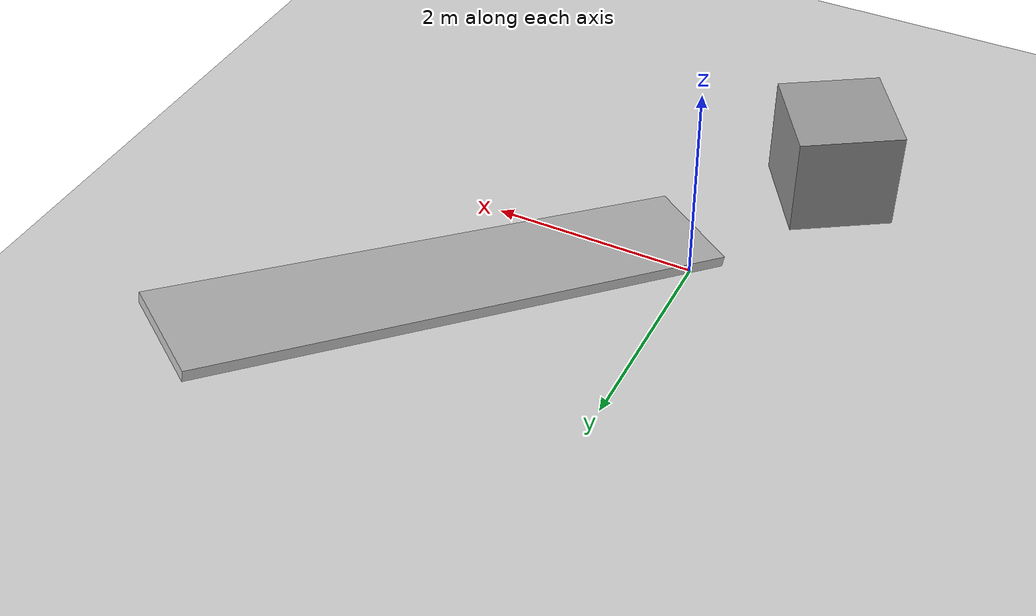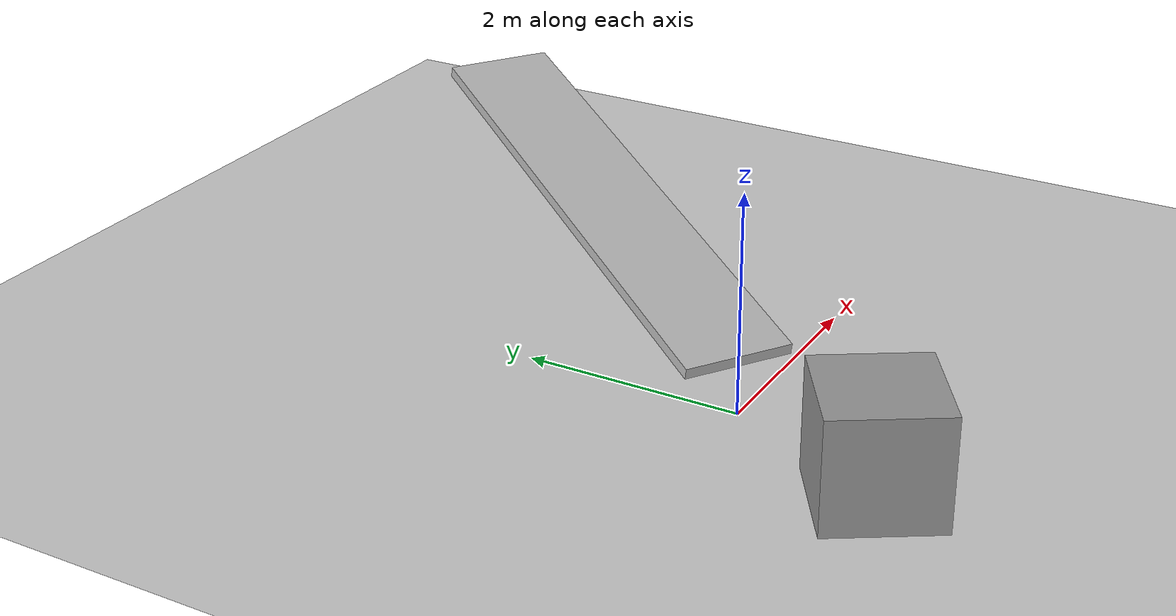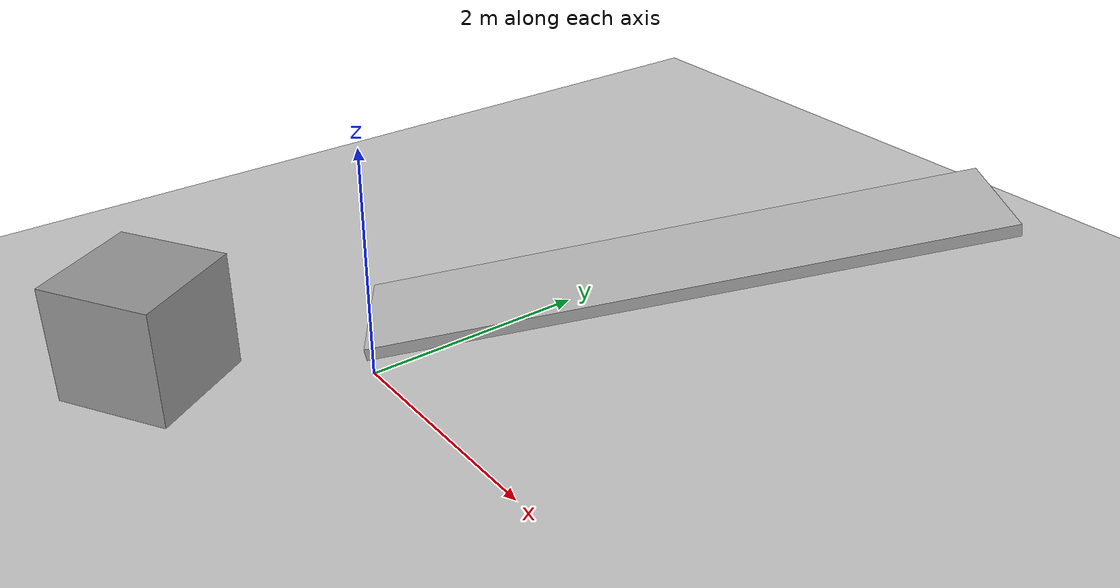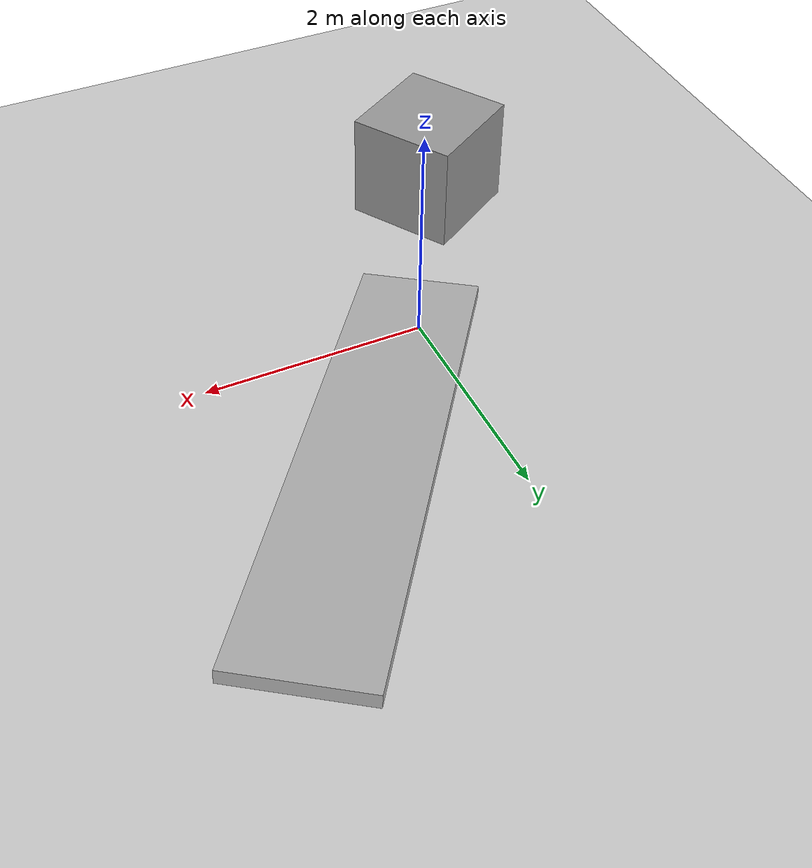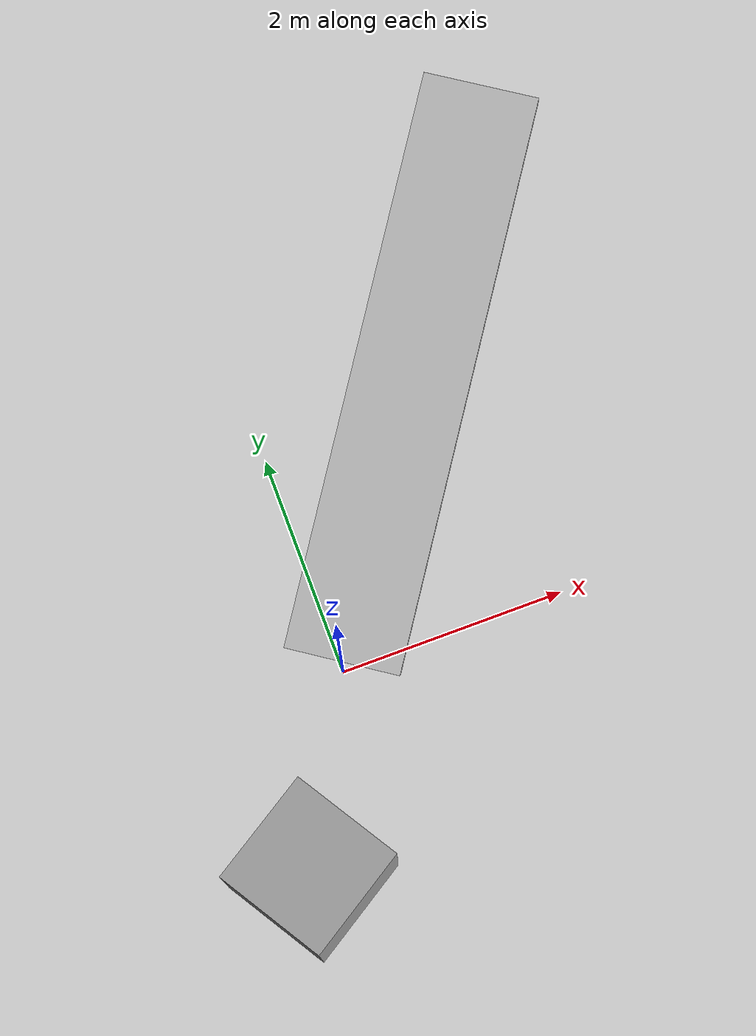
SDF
<?xml version="1.0" ?>
<sdf version="1.5">
  <world name="default">
    <include>
      <uri>model://sun</uri>
    </include>

    <include>
      <uri>model://ground_plane</uri>
    </include>

    <include>
      <uri>model://conveyor_belt</uri>
      <pose>0 0 0.5 0.2 0 -0.6</pose>
    </include>
    <model name='unit_box'>
      <pose frame=''>-0.83 -1.55 0.6 1.57 0 0.557</pose>
      <link name='link'>
        <inertial>
          <mass>1</mass>
          <inertia>
            <ixx>0.166667</ixx>
            <ixy>0</ixy>
            <ixz>0</ixz>
            <iyy>0.166667</iyy>
            <iyz>0</iyz>
            <izz>0.166667</izz>
          </inertia>
        </inertial>
        <collision name='collision'>
          <geometry>
            <box>
              <size>0.999998 0.999998 0.999998</size>
            </box>
          </geometry>
          <max_contacts>10</max_contacts>
          <surface>
            <contact>
              <ode/>
            </contact>
            <bounce/>
            <friction>
              <torsional>
                <ode/>
              </torsional>
              <ode/>
            </friction>
          </surface>
        </collision>
        <visual name='visual'>
          <geometry>
            <box>
              <size>0.999998 0.999998 0.999998</size>
            </box>
          </geometry>
          <material>
            <script>
              <name>Gazebo/Grey</name>
              <uri>file://media/materials/scripts/gazebo.material</uri>
            </script>
          </material>
        </visual>
        <self_collide>0</self_collide>
        <kinematic>0</kinematic>
        <gravity>1</gravity>
      </link>
    </model>
  </world>
</sdf>

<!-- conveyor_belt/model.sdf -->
<sdf version="1.6">
    <!-- the origin of this model is at the middle of the 'top' of the belt -->
    <model name="conveyor_belt">
        <static>true</static>
        <plugin name="conveyor_belt_plugin" filename="libROSConveyorBeltPlugin.so">
            <belt_velocity>1.</belt_velocity>
            <velocity_axis>0 1 0</velocity_axis>
            <contact_sensor_name>conveyor_belt_contact</contact_sensor_name>
        </plugin>
        <link name="belt">
            <pose>0 2.5 0 0 0 0</pose>
            <sensor name='conveyor_belt_contact' type='contact'>
                <update_rate>10</update_rate>
                <contact>
                    <collision>belt_collision</collision>
                </contact>
            </sensor>
            <inertial>
                <mass>10</mass>
                <inertia>
                    <ixx>20.841</ixx>
                    <ixy>0</ixy>
                    <ixz>0</ixz>
                    <iyy>0.8417</iyy>
                    <iyz>0</iyz>
                    <izz>21.66667</izz>
                </inertia>
            </inertial>
            <collision name="belt_collision">
            <geometry>
                <box>
                <size>1 5 0.1</size>
                </box>
            </geometry>
            <surface>
                <friction>
                    <ode>
                        <mu>0.0</mu>
                        <mu2>0.0</mu2>
                    </ode>
                    <torsional>
                        <coefficient>1000.0</coefficient>
                        <patch_radius>0.1</patch_radius>
                    </torsional>
                </friction>
            </surface>
            </collision>
            <visual name="visual">
            <geometry>
                <box>
                <size>1 5 0.1</size>
                </box>
            </geometry>
            </visual>
        </link>
    </model>
</sdf>
